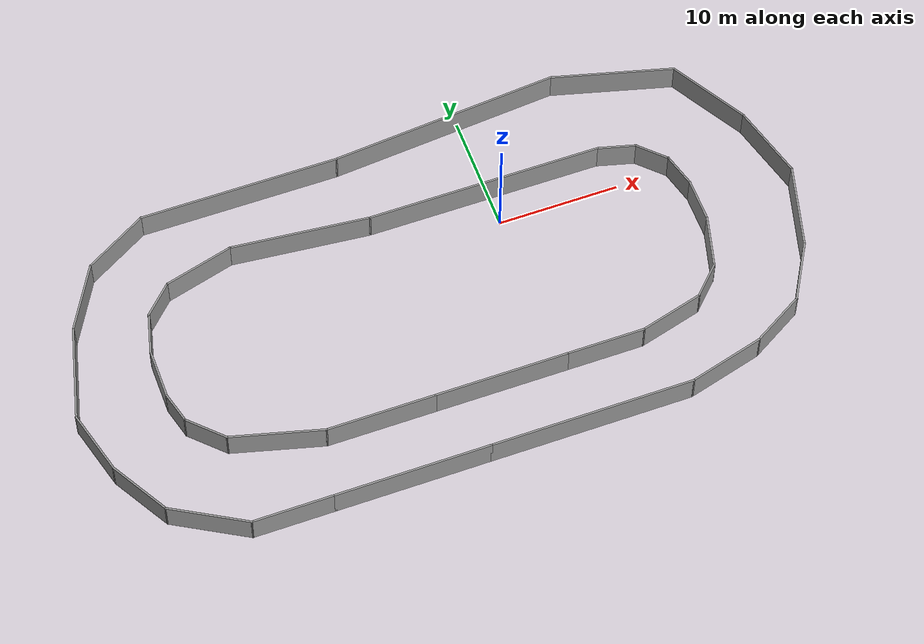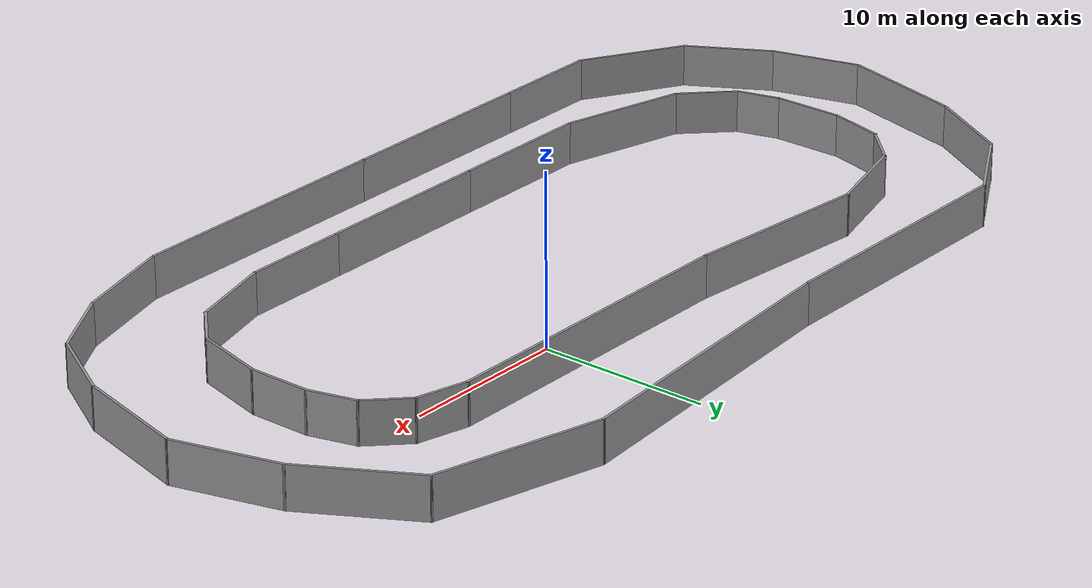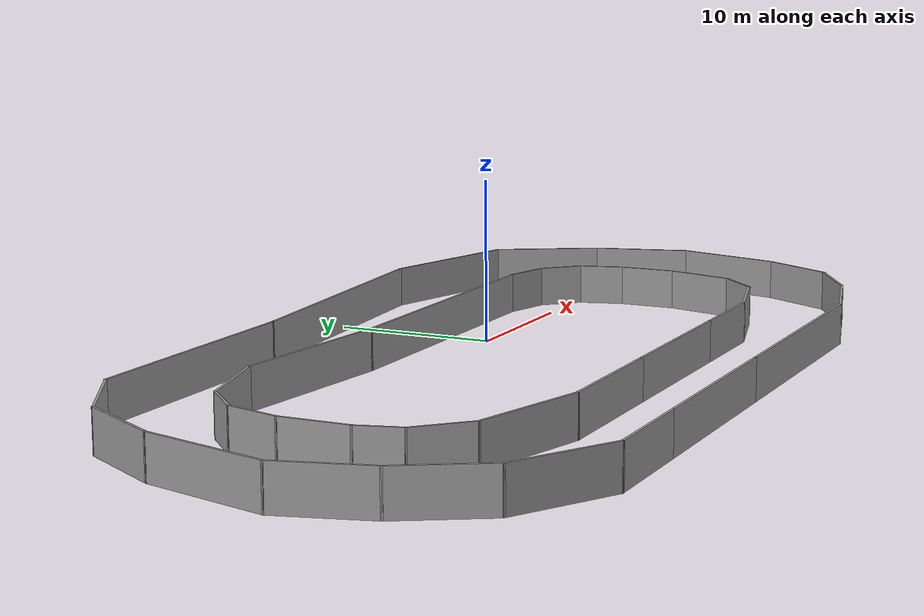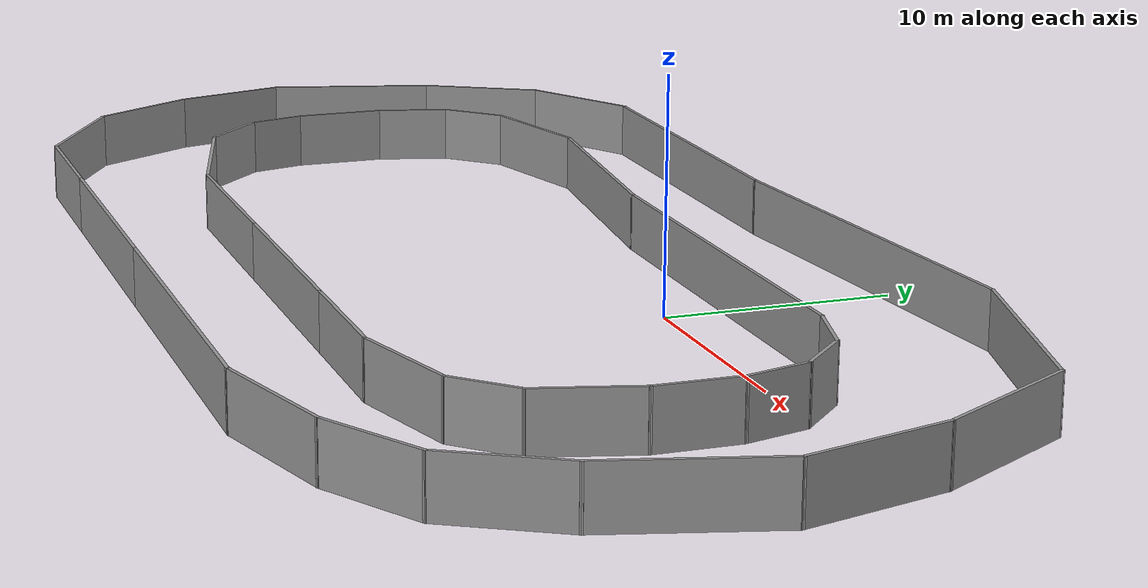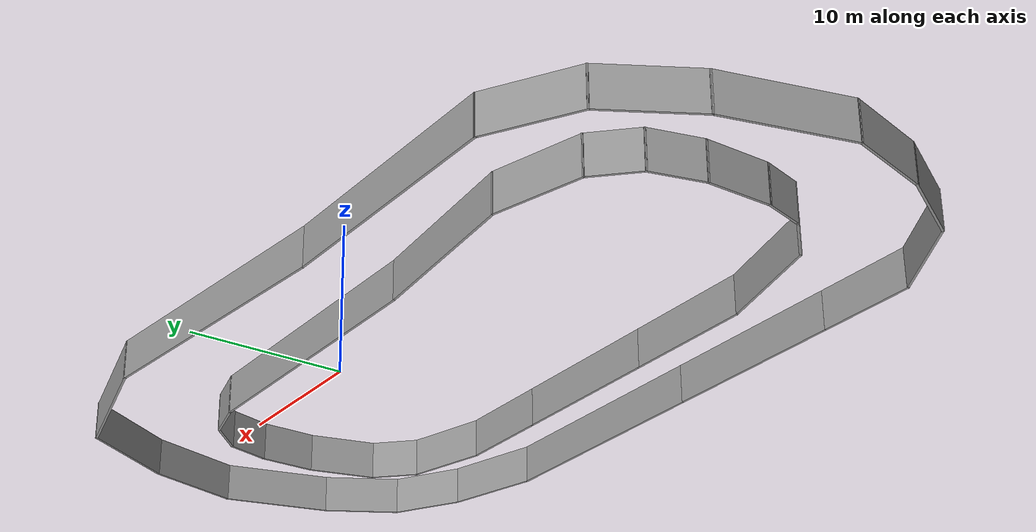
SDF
<?xml version='1.0'?>
<sdf version='1.7'>
  <model name='track'>
    <pose>-7.03235 -4.83566 0 0 -0 0</pose>
    <link name='Wall_10'>
      <collision name='Wall_10_Collision'>
        <geometry>
          <box>
            <size>3 0.15 2.5</size>
          </box>
        </geometry>
        <pose>0 0 1.25 0 -0 0</pose>
      </collision>
      <visual name='Wall_10_Visual'>
        <pose>0 0 1.25 0 -0 0</pose>
        <geometry>
          <box>
            <size>3 0.15 2.5</size>
          </box>
        </geometry>
        <material>
          <script>
            <uri>file://media/materials/scripts/gazebo.material</uri>
            <name>Gazebo/Grey</name>
          </script>
          <ambient>1 1 1 1</ambient>
        </material>
        <meta>
          <layer>0</layer>
        </meta>
      </visual>
      <pose>20.2639 5.57396 0 0 -0 -0.785398</pose>
    </link>
    <link name='Wall_11'>
      <collision name='Wall_11_Collision'>
        <geometry>
          <box>
            <size>3 0.15 2.5</size>
          </box>
        </geometry>
        <pose>0 0 1.25 0 -0 0</pose>
      </collision>
      <visual name='Wall_11_Visual'>
        <pose>0 0 1.25 0 -0 0</pose>
        <geometry>
          <box>
            <size>3 0.15 2.5</size>
          </box>
        </geometry>
        <material>
          <script>
            <uri>file://media/materials/scripts/gazebo.material</uri>
            <name>Gazebo/Grey</name>
          </script>
          <ambient>1 1 1 1</ambient>
        </material>
        <meta>
          <layer>0</layer>
        </meta>
      </visual>
      <pose>21.6404 3.18989 0 0 -0 -1.309</pose>
    </link>
    <link name='Wall_12'>
      <collision name='Wall_12_Collision'>
        <geometry>
          <box>
            <size>3.75 0.15 2.5</size>
          </box>
        </geometry>
        <pose>0 0 1.25 0 -0 0</pose>
      </collision>
      <visual name='Wall_12_Visual'>
        <pose>0 0 1.25 0 -0 0</pose>
        <geometry>
          <box>
            <size>3.75 0.15 2.5</size>
          </box>
        </geometry>
        <material>
          <script>
            <uri>file://media/materials/scripts/gazebo.material</uri>
            <name>Gazebo/Grey</name>
          </script>
          <ambient>1 1 1 1</ambient>
        </material>
        <meta>
          <layer>0</layer>
        </meta>
      </visual>
      <pose>22.0092 0.013447 0 0 -0 -1.5708</pose>
    </link>
    <link name='Wall_13'>
      <collision name='Wall_13_Collision'>
        <geometry>
          <box>
            <size>4.5 0.15 2.5</size>
          </box>
        </geometry>
        <pose>0 0 1.25 0 -0 0</pose>
      </collision>
      <visual name='Wall_13_Visual'>
        <pose>0 0 1.25 0 -0 0</pose>
        <geometry>
          <box>
            <size>4.5 0.15 2.5</size>
          </box>
        </geometry>
        <material>
          <script>
            <uri>file://media/materials/scripts/gazebo.material</uri>
            <name>Gazebo/Grey</name>
          </script>
          <ambient>1 1 1 1</ambient>
        </material>
        <meta>
          <layer>0</layer>
        </meta>
      </visual>
      <pose>21.4463 -3.88744 0 0 -0 -1.8326</pose>
    </link>
    <link name='Wall_14'>
      <collision name='Wall_14_Collision'>
        <geometry>
          <box>
            <size>3.25 0.15 2.5</size>
          </box>
        </geometry>
        <pose>0 0 1.25 0 -0 0</pose>
      </collision>
      <visual name='Wall_14_Visual'>
        <pose>0 0 1.25 0 -0 0</pose>
        <geometry>
          <box>
            <size>3.25 0.15 2.5</size>
          </box>
        </geometry>
        <material>
          <script>
            <uri>file://media/materials/scripts/gazebo.material</uri>
            <name>Gazebo/Grey</name>
          </script>
          <ambient>1 1 1 1</ambient>
        </material>
        <meta>
          <layer>0</layer>
        </meta>
      </visual>
      <pose>19.7873 -7.08435 0 0 -0 -2.35619</pose>
    </link>
    <link name='Wall_15'>
      <collision name='Wall_15_Collision'>
        <geometry>
          <box>
            <size>5.5 0.15 2.5</size>
          </box>
        </geometry>
        <pose>0 0 1.25 0 -0 0</pose>
      </collision>
      <visual name='Wall_15_Visual'>
        <pose>0 0 1.25 0 -0 0</pose>
        <geometry>
          <box>
            <size>5.5 0.15 2.5</size>
          </box>
        </geometry>
        <material>
          <script>
            <uri>file://media/materials/scripts/gazebo.material</uri>
            <name>Gazebo/Grey</name>
          </script>
          <ambient>1 1 1 1</ambient>
        </material>
        <meta>
          <layer>0</layer>
        </meta>
      </visual>
      <pose>16.1075 -8.8727 0 0 -0 -2.87979</pose>
    </link>
    <link name='Wall_16'>
      <collision name='Wall_16_Collision'>
        <geometry>
          <box>
            <size>6.5 0.15 2.5</size>
          </box>
        </geometry>
        <pose>0 0 1.25 0 -0 0</pose>
      </collision>
      <visual name='Wall_16_Visual'>
        <pose>0 0 1.25 0 -0 0</pose>
        <geometry>
          <box>
            <size>6.5 0.15 2.5</size>
          </box>
        </geometry>
        <material>
          <script>
            <uri>file://media/materials/scripts/gazebo.material</uri>
            <name>Gazebo/Grey</name>
          </script>
          <ambient>1 1 1 1</ambient>
        </material>
        <meta>
          <layer>0</layer>
        </meta>
      </visual>
      <pose>10.3486 -9.56504 0 0 -0 3.14159</pose>
    </link>
    <link name='Wall_17'>
      <collision name='Wall_17_Collision'>
        <geometry>
          <box>
            <size>11 0.15 2.5</size>
          </box>
        </geometry>
        <pose>0 0 1.25 0 -0 0</pose>
      </collision>
      <visual name='Wall_17_Visual'>
        <pose>0 0 1.25 0 -0 0</pose>
        <geometry>
          <box>
            <size>11 0.15 2.5</size>
          </box>
        </geometry>
        <material>
          <script>
            <uri>file://media/materials/scripts/gazebo.material</uri>
            <name>Gazebo/Grey</name>
          </script>
          <ambient>1 1 1 1</ambient>
        </material>
        <meta>
          <layer>0</layer>
        </meta>
      </visual>
      <pose>1.74861 -9.56504 0 0 -0 3.14159</pose>
    </link>
    <link name='Wall_18'>
      <collision name='Wall_18_Collision'>
        <geometry>
          <box>
            <size>9 0.15 2.5</size>
          </box>
        </geometry>
        <pose>0 0 1.25 0 -0 0</pose>
      </collision>
      <visual name='Wall_18_Visual'>
        <pose>0 0 1.25 0 -0 0</pose>
        <geometry>
          <box>
            <size>9 0.15 2.5</size>
          </box>
        </geometry>
        <material>
          <script>
            <uri>file://media/materials/scripts/gazebo.material</uri>
            <name>Gazebo/Grey</name>
          </script>
          <ambient>1 1 1 1</ambient>
        </material>
        <meta>
          <layer>0</layer>
        </meta>
      </visual>
      <pose>-8.10139 -9.56504 0 0 -0 3.14159</pose>
    </link>
    <link name='Wall_19'>
      <collision name='Wall_19_Collision'>
        <geometry>
          <box>
            <size>7.75 0.15 2.5</size>
          </box>
        </geometry>
        <pose>0 0 1.25 0 -0 0</pose>
      </collision>
      <visual name='Wall_19_Visual'>
        <pose>0 0 1.25 0 -0 0</pose>
        <geometry>
          <box>
            <size>7.75 0.15 2.5</size>
          </box>
        </geometry>
        <material>
          <script>
            <uri>file://media/materials/scripts/gazebo.material</uri>
            <name>Gazebo/Grey</name>
          </script>
          <ambient>1 1 1 1</ambient>
        </material>
        <meta>
          <layer>0</layer>
        </meta>
      </visual>
      <pose>-16.1969 -8.58153 0 0 -0 2.87979</pose>
    </link>
    <link name='Wall_20'>
      <collision name='Wall_20_Collision'>
        <geometry>
          <box>
            <size>3.75 0.15 2.5</size>
          </box>
        </geometry>
        <pose>0 0 1.25 0 -0 0</pose>
      </collision>
      <visual name='Wall_20_Visual'>
        <pose>0 0 1.25 0 -0 0</pose>
        <geometry>
          <box>
            <size>3.75 0.15 2.5</size>
          </box>
        </geometry>
        <material>
          <script>
            <uri>file://media/materials/scripts/gazebo.material</uri>
            <name>Gazebo/Grey</name>
          </script>
          <ambient>1 1 1 1</ambient>
        </material>
        <meta>
          <layer>0</layer>
        </meta>
      </visual>
      <pose>-21.1402 -6.32523 0 0 -0 2.35619</pose>
    </link>
    <link name='Wall_21'>
      <collision name='Wall_21_Collision'>
        <geometry>
          <box>
            <size>2.75 0.15 2.5</size>
          </box>
        </geometry>
        <pose>0 0 1.25 0 -0 0</pose>
      </collision>
      <visual name='Wall_21_Visual'>
        <pose>0 0 1.25 0 -0 0</pose>
        <geometry>
          <box>
            <size>2.75 0.15 2.5</size>
          </box>
        </geometry>
        <material>
          <script>
            <uri>file://media/materials/scripts/gazebo.material</uri>
            <name>Gazebo/Grey</name>
          </script>
          <ambient>1 1 1 1</ambient>
        </material>
        <meta>
          <layer>0</layer>
        </meta>
      </visual>
      <pose>-22.7495 -3.79673 0 0 -0 1.8326</pose>
    </link>
    <link name='Wall_22'>
      <collision name='Wall_22_Collision'>
        <geometry>
          <box>
            <size>4.25 0.15 2.5</size>
          </box>
        </geometry>
        <pose>0 0 1.25 0 -0 0</pose>
      </collision>
      <visual name='Wall_22_Visual'>
        <pose>0 0 1.25 0 -0 0</pose>
        <geometry>
          <box>
            <size>4.25 0.15 2.5</size>
          </box>
        </geometry>
        <material>
          <script>
            <uri>file://media/materials/scripts/gazebo.material</uri>
            <name>Gazebo/Grey</name>
          </script>
          <ambient>1 1 1 1</ambient>
        </material>
        <meta>
          <layer>0</layer>
        </meta>
      </visual>
      <pose>-23.0859 -0.491027 0 0 -0 1.5708</pose>
    </link>
    <link name='Wall_23'>
      <collision name='Wall_23_Collision'>
        <geometry>
          <box>
            <size>3.5 0.15 2.5</size>
          </box>
        </geometry>
        <pose>0 0 1.25 0 -0 0</pose>
      </collision>
      <visual name='Wall_23_Visual'>
        <pose>0 0 1.25 0 -0 0</pose>
        <geometry>
          <box>
            <size>3.5 0.15 2.5</size>
          </box>
        </geometry>
        <material>
          <script>
            <uri>file://media/materials/scripts/gazebo.material</uri>
            <name>Gazebo/Grey</name>
          </script>
          <ambient>1 1 1 1</ambient>
        </material>
        <meta>
          <layer>0</layer>
        </meta>
      </visual>
      <pose>-22.6524 3.1769 0 0 -0 1.309</pose>
    </link>
    <link name='Wall_24'>
      <collision name='Wall_24_Collision'>
        <geometry>
          <box>
            <size>3.25 0.15 2.5</size>
          </box>
        </geometry>
        <pose>0 0 1.25 0 -0 0</pose>
      </collision>
      <visual name='Wall_24_Visual'>
        <pose>0 0 1.25 0 -0 0</pose>
        <geometry>
          <box>
            <size>3.25 0.15 2.5</size>
          </box>
        </geometry>
        <material>
          <script>
            <uri>file://media/materials/scripts/gazebo.material</uri>
            <name>Gazebo/Grey</name>
          </script>
          <ambient>1 1 1 1</ambient>
        </material>
        <meta>
          <layer>0</layer>
        </meta>
      </visual>
      <pose>-21.1229 5.89084 0 0 -0 0.785398</pose>
    </link>
    <link name='Wall_25'>
      <collision name='Wall_25_Collision'>
        <geometry>
          <box>
            <size>6 0.15 2.5</size>
          </box>
        </geometry>
        <pose>0 0 1.25 0 -0 0</pose>
      </collision>
      <visual name='Wall_25_Visual'>
        <pose>0 0 1.25 0 -0 0</pose>
        <geometry>
          <box>
            <size>6 0.15 2.5</size>
          </box>
        </geometry>
        <material>
          <script>
            <uri>file://media/materials/scripts/gazebo.material</uri>
            <name>Gazebo/Grey</name>
          </script>
          <ambient>1 1 1 1</ambient>
        </material>
        <meta>
          <layer>0</layer>
        </meta>
      </visual>
      <pose>-17.2015 7.7439 0 0 -0 0.261799</pose>
    </link>
    <link name='Wall_26'>
      <collision name='Wall_26_Collision'>
        <geometry>
          <box>
            <size>11.4933 0.15 2.5</size>
          </box>
        </geometry>
        <pose>0 0 1.25 0 -0 0</pose>
      </collision>
      <visual name='Wall_26_Visual'>
        <pose>0 0 1.25 0 -0 0</pose>
        <geometry>
          <box>
            <size>11.4933 0.15 2.5</size>
          </box>
        </geometry>
        <material>
          <script>
            <uri>file://media/materials/scripts/gazebo.material</uri>
            <name>Gazebo/Grey</name>
          </script>
          <ambient>1 1 1 1</ambient>
        </material>
        <meta>
          <layer>0</layer>
        </meta>
      </visual>
      <pose>-8.73212 7.94244 0 0 -0 -0.098634</pose>
    </link>
    <link name='Wall_30'>
      <collision name='Wall_30_Collision'>
        <geometry>
          <box>
            <size>16.5 0.15 2.5</size>
          </box>
        </geometry>
        <pose>0 0 1.25 0 -0 0</pose>
      </collision>
      <visual name='Wall_30_Visual'>
        <pose>0 0 1.25 0 -0 0</pose>
        <geometry>
          <box>
            <size>16.5 0.15 2.5</size>
          </box>
        </geometry>
        <material>
          <script>
            <uri>file://media/materials/scripts/gazebo.material</uri>
            <name>Gazebo/Grey</name>
          </script>
          <ambient>1 1 1 1</ambient>
        </material>
        <meta>
          <layer>0</layer>
        </meta>
      </visual>
      <pose>-11.9505 13.5601 0 0 -0 3.14159</pose>
    </link>
    <link name='Wall_31'>
      <collision name='Wall_31_Collision'>
        <geometry>
          <box>
            <size>6 0.15 2.5</size>
          </box>
        </geometry>
        <pose>0 0 1.25 0 -0 0</pose>
      </collision>
      <visual name='Wall_31_Visual'>
        <pose>0 0 1.25 0 -0 0</pose>
        <geometry>
          <box>
            <size>6 0.15 2.5</size>
          </box>
        </geometry>
        <material>
          <script>
            <uri>file://media/materials/scripts/gazebo.material</uri>
            <name>Gazebo/Grey</name>
          </script>
          <ambient>1 1 1 1</ambient>
        </material>
        <meta>
          <layer>0</layer>
        </meta>
      </visual>
      <pose>-22.6586 12.0976 0 0 -0 -2.61799</pose>
    </link>
    <link name='Wall_32'>
      <collision name='Wall_32_Collision'>
        <geometry>
          <box>
            <size>6 0.15 2.5</size>
          </box>
        </geometry>
        <pose>0 0 1.25 0 -0 0</pose>
      </collision>
      <visual name='Wall_32_Visual'>
        <pose>0 0 1.25 0 -0 0</pose>
        <geometry>
          <box>
            <size>6 0.15 2.5</size>
          </box>
        </geometry>
        <material>
          <script>
            <uri>file://media/materials/scripts/gazebo.material</uri>
            <name>Gazebo/Grey</name>
          </script>
          <ambient>1 1 1 1</ambient>
        </material>
        <meta>
          <layer>0</layer>
        </meta>
      </visual>
      <pose>-26.6542 8.10199 0 0 -0 -2.0944</pose>
    </link>
    <link name='Wall_33'>
      <collision name='Wall_33_Collision'>
        <geometry>
          <box>
            <size>8 0.15 2.5</size>
          </box>
        </geometry>
        <pose>0 0 1.25 0 -0 0</pose>
      </collision>
      <visual name='Wall_33_Visual'>
        <pose>0 0 1.25 0 -0 0</pose>
        <geometry>
          <box>
            <size>8 0.15 2.5</size>
          </box>
        </geometry>
        <material>
          <script>
            <uri>file://media/materials/scripts/gazebo.material</uri>
            <name>Gazebo/Grey</name>
          </script>
          <ambient>1 1 1 1</ambient>
        </material>
        <meta>
          <layer>0</layer>
        </meta>
      </visual>
      <pose>-29.1326 1.7776 0 0 -0 -1.8326</pose>
    </link>
    <link name='Wall_34'>
      <collision name='Wall_34_Collision'>
        <geometry>
          <box>
            <size>5.5 0.15 2.5</size>
          </box>
        </geometry>
        <pose>0 0 1.25 0 -0 0</pose>
      </collision>
      <visual name='Wall_34_Visual'>
        <pose>0 0 1.25 0 -0 0</pose>
        <geometry>
          <box>
            <size>5.5 0.15 2.5</size>
          </box>
        </geometry>
        <material>
          <script>
            <uri>file://media/materials/scripts/gazebo.material</uri>
            <name>Gazebo/Grey</name>
          </script>
          <ambient>1 1 1 1</ambient>
        </material>
        <meta>
          <layer>0</layer>
        </meta>
      </visual>
      <pose>-29.4561 -4.59751 0 0 -0 -1.309</pose>
    </link>
    <link name='Wall_35'>
      <collision name='Wall_35_Collision'>
        <geometry>
          <box>
            <size>5.5 0.15 2.5</size>
          </box>
        </geometry>
        <pose>0 0 1.25 0 -0 0</pose>
      </collision>
      <visual name='Wall_35_Visual'>
        <pose>0 0 1.25 0 -0 0</pose>
        <geometry>
          <box>
            <size>5.5 0.15 2.5</size>
          </box>
        </geometry>
        <material>
          <script>
            <uri>file://media/materials/scripts/gazebo.material</uri>
            <name>Gazebo/Grey</name>
          </script>
          <ambient>1 1 1 1</ambient>
        </material>
        <meta>
          <layer>0</layer>
        </meta>
      </visual>
      <pose>-27.4263 -9.49798 0 0 -0 -1.0472</pose>
    </link>
    <link name='Wall_36'>
      <collision name='Wall_36_Collision'>
        <geometry>
          <box>
            <size>6.75 0.15 2.5</size>
          </box>
        </geometry>
        <pose>0 0 1.25 0 -0 0</pose>
      </collision>
      <visual name='Wall_36_Visual'>
        <pose>0 0 1.25 0 -0 0</pose>
        <geometry>
          <box>
            <size>6.75 0.15 2.5</size>
          </box>
        </geometry>
        <material>
          <script>
            <uri>file://media/materials/scripts/gazebo.material</uri>
            <name>Gazebo/Grey</name>
          </script>
          <ambient>1 1 1 1</ambient>
        </material>
        <meta>
          <layer>0</layer>
        </meta>
      </visual>
      <pose>-23.2309 -13.4646 0 0 -0 -0.523599</pose>
    </link>
    <link name='Wall_37'>
      <collision name='Wall_37_Collision'>
        <geometry>
          <box>
            <size>6.75 0.15 2.5</size>
          </box>
        </geometry>
        <pose>0 0 1.25 0 -0 0</pose>
      </collision>
      <visual name='Wall_37_Visual'>
        <pose>0 0 1.25 0 -0 0</pose>
        <geometry>
          <box>
            <size>6.75 0.15 2.5</size>
          </box>
        </geometry>
        <material>
          <script>
            <uri>file://media/materials/scripts/gazebo.material</uri>
            <name>Gazebo/Grey</name>
          </script>
          <ambient>1 1 1 1</ambient>
        </material>
        <meta>
          <layer>0</layer>
        </meta>
      </visual>
      <pose>-17.073 -15.1146 0 0 -0 0</pose>
    </link>
    <link name='Wall_38'>
      <collision name='Wall_38_Collision'>
        <geometry>
          <box>
            <size>12.75 0.15 2.5</size>
          </box>
        </geometry>
        <pose>0 0 1.25 0 -0 0</pose>
      </collision>
      <visual name='Wall_38_Visual'>
        <pose>0 0 1.25 0 -0 0</pose>
        <geometry>
          <box>
            <size>12.75 0.15 2.5</size>
          </box>
        </geometry>
        <material>
          <script>
            <uri>file://media/materials/scripts/gazebo.material</uri>
            <name>Gazebo/Grey</name>
          </script>
          <ambient>1 1 1 1</ambient>
        </material>
        <meta>
          <layer>0</layer>
        </meta>
      </visual>
      <pose>-7.47301 -15.1146 0 0 -0 0</pose>
    </link>
    <link name='Wall_39'>
      <collision name='Wall_39_Collision'>
        <geometry>
          <box>
            <size>16.75 0.15 2.5</size>
          </box>
        </geometry>
        <pose>0 0 1.25 0 -0 0</pose>
      </collision>
      <visual name='Wall_39_Visual'>
        <pose>0 0 1.25 0 -0 0</pose>
        <geometry>
          <box>
            <size>16.75 0.15 2.5</size>
          </box>
        </geometry>
        <material>
          <script>
            <uri>file://media/materials/scripts/gazebo.material</uri>
            <name>Gazebo/Grey</name>
          </script>
          <ambient>1 1 1 1</ambient>
        </material>
        <meta>
          <layer>0</layer>
        </meta>
      </visual>
      <pose>7.12699 -15.1146 0 0 -0 0</pose>
    </link>
    <link name='Wall_40'>
      <collision name='Wall_40_Collision'>
        <geometry>
          <box>
            <size>6.5 0.15 2.5</size>
          </box>
        </geometry>
        <pose>0 0 1.25 0 -0 0</pose>
      </collision>
      <visual name='Wall_40_Visual'>
        <pose>0 0 1.25 0 -0 0</pose>
        <geometry>
          <box>
            <size>6.5 0.15 2.5</size>
          </box>
        </geometry>
        <material>
          <script>
            <uri>file://media/materials/scripts/gazebo.material</uri>
            <name>Gazebo/Grey</name>
          </script>
          <ambient>1 1 1 1</ambient>
        </material>
        <meta>
          <layer>0</layer>
        </meta>
      </visual>
      <pose>18.4938 -14.2928 0 0 -0 0.261799</pose>
    </link>
    <link name='Wall_41'>
      <collision name='Wall_41_Collision'>
        <geometry>
          <box>
            <size>5 0.15 2.5</size>
          </box>
        </geometry>
        <pose>0 0 1.25 0 -0 0</pose>
      </collision>
      <visual name='Wall_41_Visual'>
        <pose>0 0 1.25 0 -0 0</pose>
        <geometry>
          <box>
            <size>5 0.15 2.5</size>
          </box>
        </geometry>
        <material>
          <script>
            <uri>file://media/materials/scripts/gazebo.material</uri>
            <name>Gazebo/Grey</name>
          </script>
          <ambient>1 1 1 1</ambient>
        </material>
        <meta>
          <layer>0</layer>
        </meta>
      </visual>
      <pose>23.6607 -12.2586 0 0 -0 0.523599</pose>
    </link>
    <link name='Wall_42'>
      <collision name='Wall_42_Collision'>
        <geometry>
          <box>
            <size>5.25 0.15 2.5</size>
          </box>
        </geometry>
        <pose>0 0 1.25 0 -0 0</pose>
      </collision>
      <visual name='Wall_42_Visual'>
        <pose>0 0 1.25 0 -0 0</pose>
        <geometry>
          <box>
            <size>5.25 0.15 2.5</size>
          </box>
        </geometry>
        <material>
          <script>
            <uri>file://media/materials/scripts/gazebo.material</uri>
            <name>Gazebo/Grey</name>
          </script>
          <ambient>1 1 1 1</ambient>
        </material>
        <meta>
          <layer>0</layer>
        </meta>
      </visual>
      <pose>27.0358 -8.83773 0 0 -0 1.0472</pose>
    </link>
    <link name='Wall_43'>
      <collision name='Wall_43_Collision'>
        <geometry>
          <box>
            <size>7.25 0.15 2.5</size>
          </box>
        </geometry>
        <pose>0 0 1.25 0 -0 0</pose>
      </collision>
      <visual name='Wall_43_Visual'>
        <pose>0 0 1.25 0 -0 0</pose>
        <geometry>
          <box>
            <size>7.25 0.15 2.5</size>
          </box>
        </geometry>
        <material>
          <script>
            <uri>file://media/materials/scripts/gazebo.material</uri>
            <name>Gazebo/Grey</name>
          </script>
          <ambient>1 1 1 1</ambient>
        </material>
        <meta>
          <layer>0</layer>
        </meta>
      </visual>
      <pose>29.2296 -3.20033 0 0 -0 1.309</pose>
    </link>
    <link name='Wall_44'>
      <collision name='Wall_44_Collision'>
        <geometry>
          <box>
            <size>6.5 0.15 2.5</size>
          </box>
        </geometry>
        <pose>0 0 1.25 0 -0 0</pose>
      </collision>
      <visual name='Wall_44_Visual'>
        <pose>0 0 1.25 0 -0 0</pose>
        <geometry>
          <box>
            <size>6.5 0.15 2.5</size>
          </box>
        </geometry>
        <material>
          <script>
            <uri>file://media/materials/scripts/gazebo.material</uri>
            <name>Gazebo/Grey</name>
          </script>
          <ambient>1 1 1 1</ambient>
        </material>
        <meta>
          <layer>0</layer>
        </meta>
      </visual>
      <pose>29.3267 3.29552 0 0 -0 1.8326</pose>
    </link>
    <link name='Wall_45'>
      <collision name='Wall_45_Collision'>
        <geometry>
          <box>
            <size>7.25 0.15 2.5</size>
          </box>
        </geometry>
        <pose>0 0 1.25 0 -0 0</pose>
      </collision>
      <visual name='Wall_45_Visual'>
        <pose>0 0 1.25 0 -0 0</pose>
        <geometry>
          <box>
            <size>7.25 0.15 2.5</size>
          </box>
        </geometry>
        <material>
          <script>
            <uri>file://media/materials/scripts/gazebo.material</uri>
            <name>Gazebo/Grey</name>
          </script>
          <ambient>1 1 1 1</ambient>
        </material>
        <meta>
          <layer>0</layer>
        </meta>
      </visual>
      <pose>26.73 9.43673 0 0 -0 2.0944</pose>
    </link>
    <link name='Wall_46'>
      <collision name='Wall_46_Collision'>
        <geometry>
          <box>
            <size>10.25 0.15 2.5</size>
          </box>
        </geometry>
        <pose>0 0 1.25 0 -0 0</pose>
      </collision>
      <visual name='Wall_46_Visual'>
        <pose>0 0 1.25 0 -0 0</pose>
        <geometry>
          <box>
            <size>10.25 0.15 2.5</size>
          </box>
        </geometry>
        <material>
          <script>
            <uri>file://media/materials/scripts/gazebo.material</uri>
            <name>Gazebo/Grey</name>
          </script>
          <ambient>1 1 1 1</ambient>
        </material>
        <meta>
          <layer>0</layer>
        </meta>
      </visual>
      <pose>20.077 13.8182 0 0 -0 2.87979</pose>
    </link>
    <link name='Wall_47'>
      <collision name='Wall_47_Collision'>
        <geometry>
          <box>
            <size>19.189 0.15 2.5</size>
          </box>
        </geometry>
        <pose>0 0 1.25 0 -0 0</pose>
      </collision>
      <visual name='Wall_47_Visual'>
        <pose>0 0 1.25 0 -0 0</pose>
        <geometry>
          <box>
            <size>19.189 0.15 2.5</size>
          </box>
        </geometry>
        <material>
          <script>
            <uri>file://media/materials/scripts/gazebo.material</uri>
            <name>Gazebo/Grey</name>
          </script>
          <ambient>1 1 1 1</ambient>
        </material>
        <meta>
          <layer>0</layer>
        </meta>
      </visual>
      <pose>5.71181 14.3427 0 0 -0 -3.0593</pose>
    </link>
    <link name='Wall_8'>
      <collision name='Wall_8_Collision'>
        <geometry>
          <box>
            <size>19.5 0.15 2.5</size>
          </box>
        </geometry>
        <pose>0 0 1.25 0 -0 0</pose>
      </collision>
      <visual name='Wall_8_Visual'>
        <pose>0 0 1.25 0 -0 0</pose>
        <geometry>
          <box>
            <size>19.5 0.15 2.5</size>
          </box>
        </geometry>
        <material>
          <script>
            <uri>file://media/materials/scripts/gazebo.material</uri>
            <name>Gazebo/Grey</name>
          </script>
          <ambient>1 1 1 1</ambient>
        </material>
        <meta>
          <layer>0</layer>
        </meta>
      </visual>
      <pose>6.58695 7.38393 0 0 -0 0</pose>
    </link>
    <link name='Wall_9'>
      <collision name='Wall_9_Collision'>
        <geometry>
          <box>
            <size>3.25 0.15 2.5</size>
          </box>
        </geometry>
        <pose>0 0 1.25 0 -0 0</pose>
      </collision>
      <visual name='Wall_9_Visual'>
        <pose>0 0 1.25 0 -0 0</pose>
        <geometry>
          <box>
            <size>3.25 0.15 2.5</size>
          </box>
        </geometry>
        <material>
          <script>
            <uri>file://media/materials/scripts/gazebo.material</uri>
            <name>Gazebo/Grey</name>
          </script>
          <ambient>1 1 1 1</ambient>
        </material>
        <meta>
          <layer>0</layer>
        </meta>
      </visual>
      <pose>17.7591 6.98276 0 0 -0 -0.261799</pose>
    </link>
    <static>1</static>
  </model>
</sdf>
